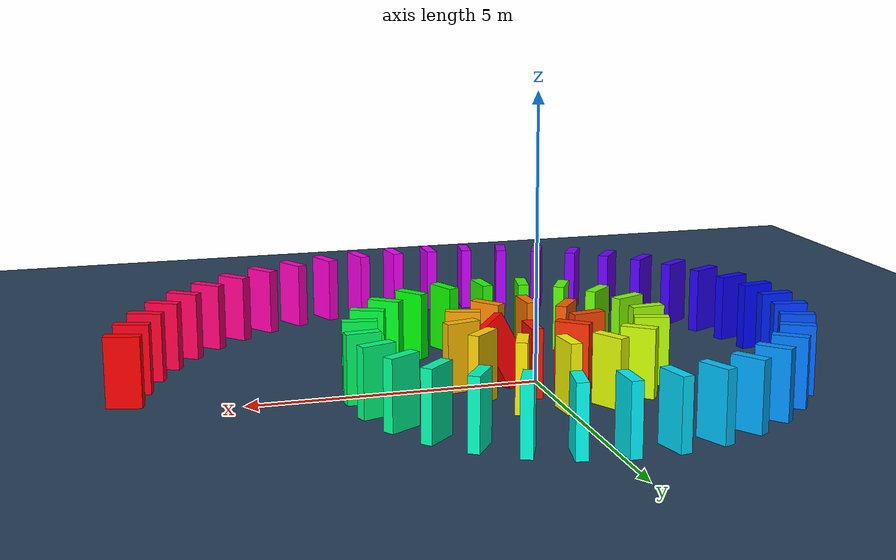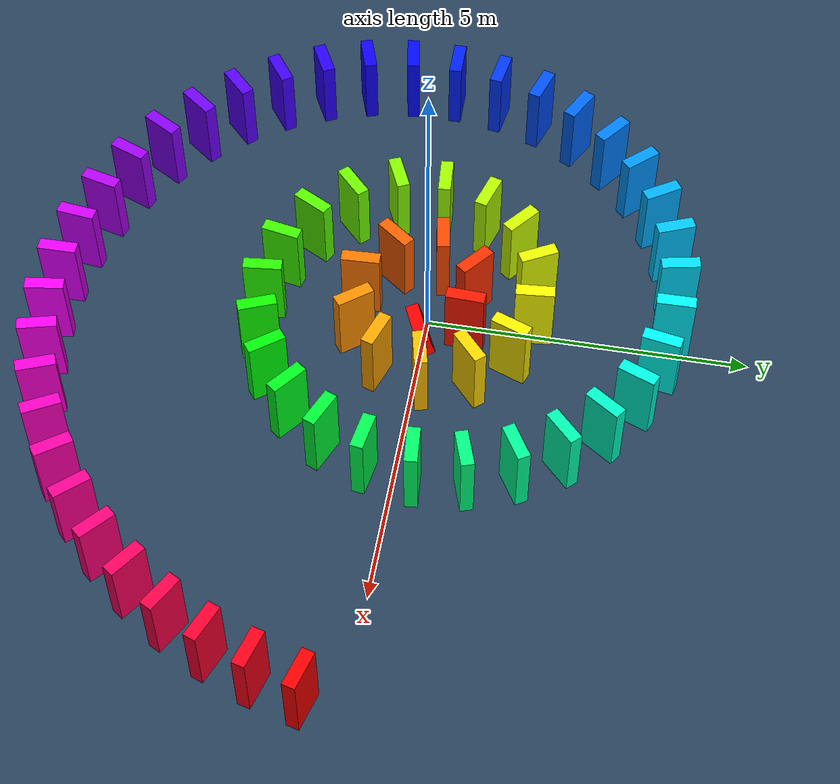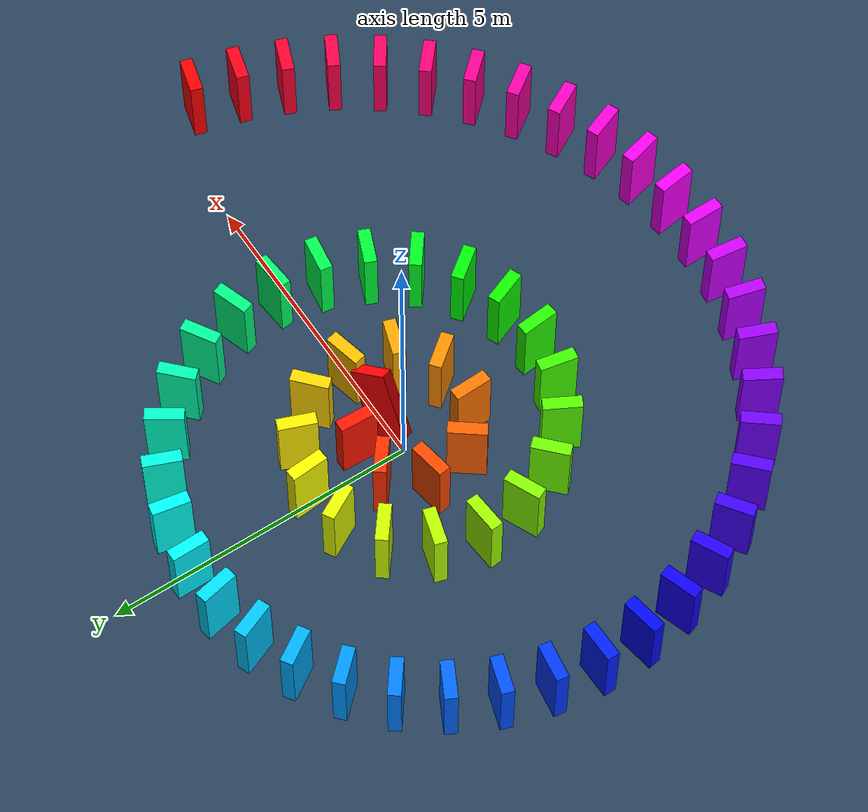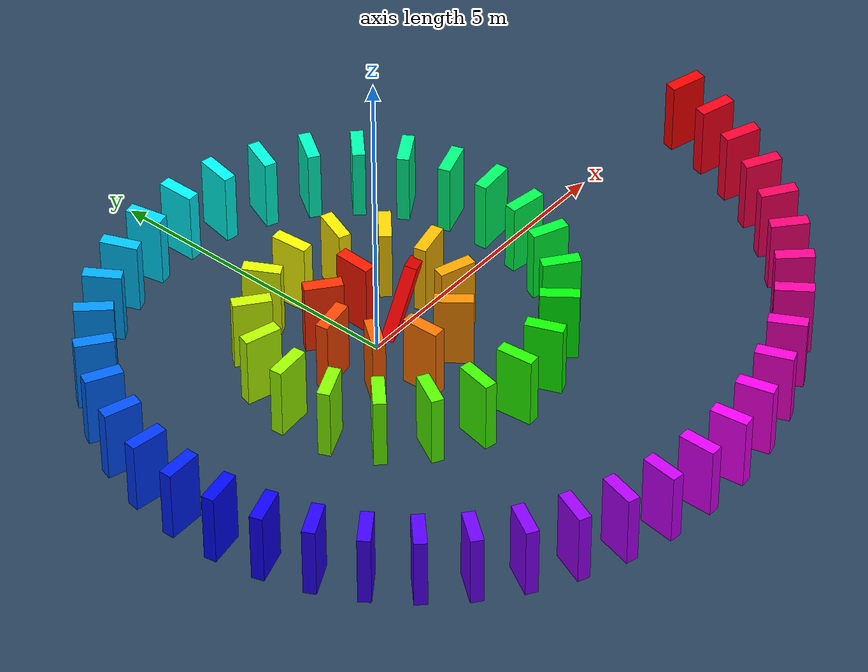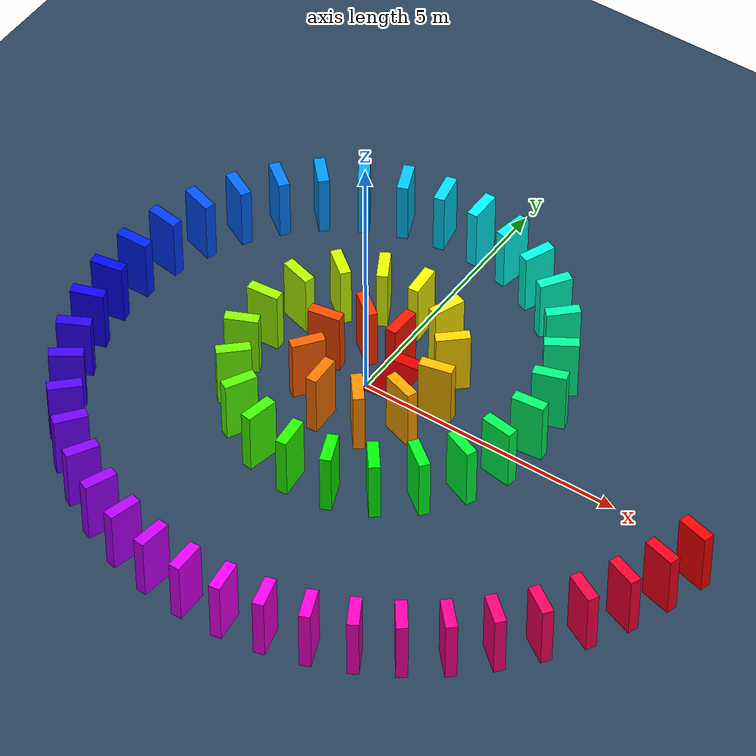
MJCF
<mujoco>
  <visual>
    <headlight diffuse="0.6 0.6 0.6" ambient="0.1 0.1 0.1" specular="0 0 0"/>
    <rgba haze="0.15 0.25 0.35 1"/>
    <global azimuth="120" elevation="-20"/>
  </visual>
  <asset>
    <texture type="skybox" builtin="gradient" rgb1="0.3 0.5 0.7" rgb2="0 0 0" width="512" height="3072"/>
    <texture type="2d" name="groundplane" builtin="checker" mark="edge" rgb1="0.2 0.3 0.4" rgb2="0.1 0.2 0.3" markrgb="0.8 0.8 0.8" width="300" height="300"/>
    <material name="groundplane" texture="groundplane" texuniform="true" texrepeat="5 5" reflectance="0.2"/>
  </asset>
  <worldbody>
    <light pos="0 0 1.5" dir="0 0 -1" directional="true"/>
    <geom name="floor" size="0 0 0.05" type="plane" material="groundplane"/>
    <body name="trigger" pos="0.6000 0.0000 0.5767" euler="0 28.0 116.4">
      <geom type="box" size="0.1000 0.3000 0.6000" rgba="1.000 0.000 0.000 1"/>
      <freejoint/>
    </body>
    <body name="domino_001" pos="0.2850 0.6357 0.6000" euler="0 0.0 177.7">
      <geom type="box" size="0.1000 0.3000 0.6000" rgba="1.000 0.092 0.000 1"/>
      <freejoint/>
    </body>
    <body name="domino_002" pos="-0.4336 0.6644 0.6000" euler="0 0.0 -128.4">
      <geom type="box" size="0.1000 0.3000 0.6000" rgba="1.000 0.185 0.000 1"/>
      <freejoint/>
    </body>
    <body name="domino_003" pos="-0.8849 0.0960 0.6000" euler="0 0.0 -80.5">
      <geom type="box" size="0.1000 0.3000 0.6000" rgba="1.000 0.277 0.000 1"/>
      <freejoint/>
    </body>
    <body name="domino_004" pos="-0.7640 -0.6244 0.6000" euler="0 0.0 -37.2">
      <geom type="box" size="0.1000 0.3000 0.6000" rgba="1.000 0.369 0.000 1"/>
      <freejoint/>
    </body>
    <body name="domino_005" pos="-0.1796 -1.0684 0.6000" euler="0 0.0 2.2">
      <geom type="box" size="0.1000 0.3000 0.6000" rgba="1.000 0.462 0.000 1"/>
      <freejoint/>
    </body>
    <body name="domino_006" pos="0.5564 -1.0407 0.6000" euler="0 0.0 38.3">
      <geom type="box" size="0.1000 0.3000 0.6000" rgba="1.000 0.554 0.000 1"/>
      <freejoint/>
    </body>
    <body name="domino_007" pos="1.1360 -0.5829 0.6000" euler="0 0.0 71.7">
      <geom type="box" size="0.1000 0.3000 0.6000" rgba="1.000 0.646 0.000 1"/>
      <freejoint/>
    </body>
    <body name="domino_008" pos="1.3682 0.1199 0.6000" euler="0 0.0 102.8">
      <geom type="box" size="0.1000 0.3000 0.6000" rgba="1.000 0.738 0.000 1"/>
      <freejoint/>
    </body>
    <body name="domino_009" pos="1.2044 0.8431 0.6000" euler="0 0.0 131.8">
      <geom type="box" size="0.1000 0.3000 0.6000" rgba="1.000 0.831 0.000 1"/>
      <freejoint/>
    </body>
    <body name="domino_010" pos="0.7098 1.3969 0.6000" euler="0 0.0 159.0">
      <geom type="box" size="0.1000 0.3000 0.6000" rgba="1.000 0.923 0.000 1"/>
      <freejoint/>
    </body>
    <body name="domino_011" pos="0.0158 1.6635 0.6000" euler="0 0.0 -175.4">
      <geom type="box" size="0.1000 0.3000 0.6000" rgba="0.985 1.000 0.000 1"/>
      <freejoint/>
    </body>
    <body name="domino_012" pos="-0.7259 1.6036 0.6000" euler="0 0.0 -151.2">
      <geom type="box" size="0.1000 0.3000 0.6000" rgba="0.892 1.000 0.000 1"/>
      <freejoint/>
    </body>
    <body name="domino_013" pos="-1.3782 1.2444 0.6000" euler="0 0.0 -128.2">
      <geom type="box" size="0.1000 0.3000 0.6000" rgba="0.800 1.000 0.000 1"/>
      <freejoint/>
    </body>
    <body name="domino_014" pos="-1.8392 0.6588 0.6000" euler="0 0.0 -106.4">
      <geom type="box" size="0.1000 0.3000 0.6000" rgba="0.708 1.000 0.000 1"/>
      <freejoint/>
    </body>
    <body name="domino_015" pos="-2.0495 -0.0566 0.6000" euler="0 0.0 -85.6">
      <geom type="box" size="0.1000 0.3000 0.6000" rgba="0.615 1.000 0.000 1"/>
      <freejoint/>
    </body>
    <body name="domino_016" pos="-1.9922 -0.8005 0.6000" euler="0 0.0 -65.7">
      <geom type="box" size="0.1000 0.3000 0.6000" rgba="0.523 1.000 0.000 1"/>
      <freejoint/>
    </body>
    <body name="domino_017" pos="-1.6855 -1.4810 0.6000" euler="0 0.0 -46.7">
      <geom type="box" size="0.1000 0.3000 0.6000" rgba="0.431 1.000 0.000 1"/>
      <freejoint/>
    </body>
    <body name="domino_018" pos="-1.1737 -2.0247 0.6000" euler="0 0.0 -28.5">
      <geom type="box" size="0.1000 0.3000 0.6000" rgba="0.338 1.000 0.000 1"/>
      <freejoint/>
    </body>
    <body name="domino_019" pos="-0.5174 -2.3815 0.6000" euler="0 0.0 -11.0">
      <geom type="box" size="0.1000 0.3000 0.6000" rgba="0.246 1.000 0.000 1"/>
      <freejoint/>
    </body>
    <body name="domino_020" pos="0.2159 -2.5245 0.6000" euler="0 0.0 5.8">
      <geom type="box" size="0.1000 0.3000 0.6000" rgba="0.154 1.000 0.000 1"/>
      <freejoint/>
    </body>
    <body name="domino_021" pos="0.9595 -2.4492 0.6000" euler="0 0.0 22.0">
      <geom type="box" size="0.1000 0.3000 0.6000" rgba="0.062 1.000 0.000 1"/>
      <freejoint/>
    </body>
    <body name="domino_022" pos="1.6527 -2.1692 0.6000" euler="0 0.0 37.6">
      <geom type="box" size="0.1000 0.3000 0.6000" rgba="0.000 1.000 0.031 1"/>
      <freejoint/>
    </body>
    <body name="domino_023" pos="2.2450 -1.7128 0.6000" euler="0 0.0 52.7">
      <geom type="box" size="0.1000 0.3000 0.6000" rgba="0.000 1.000 0.123 1"/>
      <freejoint/>
    </body>
    <body name="domino_024" pos="2.6981 -1.1177 0.6000" euler="0 0.0 67.3">
      <geom type="box" size="0.1000 0.3000 0.6000" rgba="0.000 1.000 0.215 1"/>
      <freejoint/>
    </body>
    <body name="domino_025" pos="2.9867 -0.4276 0.6000" euler="0 0.0 81.4">
      <geom type="box" size="0.1000 0.3000 0.6000" rgba="0.000 1.000 0.308 1"/>
      <freejoint/>
    </body>
    <body name="domino_026" pos="3.0982 0.3122 0.6000" euler="0 0.0 95.1">
      <geom type="box" size="0.1000 0.3000 0.6000" rgba="0.000 1.000 0.400 1"/>
      <freejoint/>
    </body>
    <body name="domino_027" pos="3.0314 1.0575 0.6000" euler="0 0.0 108.4">
      <geom type="box" size="0.1000 0.3000 0.6000" rgba="0.000 1.000 0.492 1"/>
      <freejoint/>
    </body>
    <body name="domino_028" pos="2.7952 1.7676 0.6000" euler="0 0.0 121.3">
      <geom type="box" size="0.1000 0.3000 0.6000" rgba="0.000 1.000 0.585 1"/>
      <freejoint/>
    </body>
    <body name="domino_029" pos="2.4066 2.4073 0.6000" euler="0 0.0 133.8">
      <geom type="box" size="0.1000 0.3000 0.6000" rgba="0.000 1.000 0.677 1"/>
      <freejoint/>
    </body>
    <body name="domino_030" pos="1.8884 2.9475 0.6000" euler="0 0.0 146.0">
      <geom type="box" size="0.1000 0.3000 0.6000" rgba="0.000 1.000 0.769 1"/>
      <freejoint/>
    </body>
    <body name="domino_031" pos="1.2680 3.3664 0.6000" euler="0 0.0 157.8">
      <geom type="box" size="0.1000 0.3000 0.6000" rgba="0.000 1.000 0.862 1"/>
      <freejoint/>
    </body>
    <body name="domino_032" pos="0.5746 3.6490 0.6000" euler="0 0.0 169.4">
      <geom type="box" size="0.1000 0.3000 0.6000" rgba="0.000 1.000 0.954 1"/>
      <freejoint/>
    </body>
    <body name="domino_033" pos="-0.1613 3.7872 0.6000" euler="0 0.0 -179.4">
      <geom type="box" size="0.1000 0.3000 0.6000" rgba="0.000 0.954 1.000 1"/>
      <freejoint/>
    </body>
    <body name="domino_034" pos="-0.9100 3.7793 0.6000" euler="0 0.0 -168.4">
      <geom type="box" size="0.1000 0.3000 0.6000" rgba="0.000 0.862 1.000 1"/>
      <freejoint/>
    </body>
    <body name="domino_035" pos="-1.6437 3.6291 0.6000" euler="0 0.0 -157.7">
      <geom type="box" size="0.1000 0.3000 0.6000" rgba="0.000 0.769 1.000 1"/>
      <freejoint/>
    </body>
    <body name="domino_036" pos="-2.3368 3.3454 0.6000" euler="0 0.0 -147.3">
      <geom type="box" size="0.1000 0.3000 0.6000" rgba="0.000 0.677 1.000 1"/>
      <freejoint/>
    </body>
    <body name="domino_037" pos="-2.9670 2.9406 0.6000" euler="0 0.0 -137.1">
      <geom type="box" size="0.1000 0.3000 0.6000" rgba="0.000 0.585 1.000 1"/>
      <freejoint/>
    </body>
    <body name="domino_038" pos="-3.5156 2.4307 0.6000" euler="0 0.0 -127.1">
      <geom type="box" size="0.1000 0.3000 0.6000" rgba="0.000 0.492 1.000 1"/>
      <freejoint/>
    </body>
    <body name="domino_039" pos="-3.9677 1.8334 0.6000" euler="0 0.0 -117.4">
      <geom type="box" size="0.1000 0.3000 0.6000" rgba="0.000 0.400 1.000 1"/>
      <freejoint/>
    </body>
    <body name="domino_040" pos="-4.3120 1.1681 0.6000" euler="0 0.0 -107.8">
      <geom type="box" size="0.1000 0.3000 0.6000" rgba="0.000 0.308 1.000 1"/>
      <freejoint/>
    </body>
    <body name="domino_041" pos="-4.5414 0.4549 0.6000" euler="0 0.0 -98.5">
      <geom type="box" size="0.1000 0.3000 0.6000" rgba="0.000 0.215 1.000 1"/>
      <freejoint/>
    </body>
    <body name="domino_042" pos="-4.6520 -0.2861 0.6000" euler="0 0.0 -89.3">
      <geom type="box" size="0.1000 0.3000 0.6000" rgba="0.000 0.123 1.000 1"/>
      <freejoint/>
    </body>
    <body name="domino_043" pos="-4.6435 -1.0352 0.6000" euler="0 0.0 -80.4">
      <geom type="box" size="0.1000 0.3000 0.6000" rgba="0.000 0.031 1.000 1"/>
      <freejoint/>
    </body>
    <body name="domino_044" pos="-4.5184 -1.7740 0.6000" euler="0 0.0 -71.6">
      <geom type="box" size="0.1000 0.3000 0.6000" rgba="0.062 0.000 1.000 1"/>
      <freejoint/>
    </body>
    <body name="domino_045" pos="-4.2821 -2.4850 0.6000" euler="0 0.0 -63.0">
      <geom type="box" size="0.1000 0.3000 0.6000" rgba="0.154 0.000 1.000 1"/>
      <freejoint/>
    </body>
    <body name="domino_046" pos="-3.9419 -3.1527 0.6000" euler="0 0.0 -54.6">
      <geom type="box" size="0.1000 0.3000 0.6000" rgba="0.246 0.000 1.000 1"/>
      <freejoint/>
    </body>
    <body name="domino_047" pos="-3.5074 -3.7632 0.6000" euler="0 0.0 -46.3">
      <geom type="box" size="0.1000 0.3000 0.6000" rgba="0.338 0.000 1.000 1"/>
      <freejoint/>
    </body>
    <body name="domino_048" pos="-2.9895 -4.3047 0.6000" euler="0 0.0 -38.1">
      <geom type="box" size="0.1000 0.3000 0.6000" rgba="0.431 0.000 1.000 1"/>
      <freejoint/>
    </body>
    <body name="domino_049" pos="-2.4001 -4.7676 0.6000" euler="0 0.0 -30.2">
      <geom type="box" size="0.1000 0.3000 0.6000" rgba="0.523 0.000 1.000 1"/>
      <freejoint/>
    </body>
    <body name="domino_050" pos="-1.7522 -5.1441 0.6000" euler="0 0.0 -22.3">
      <geom type="box" size="0.1000 0.3000 0.6000" rgba="0.615 0.000 1.000 1"/>
      <freejoint/>
    </body>
    <body name="domino_051" pos="-1.0589 -5.4287 0.6000" euler="0 0.0 -14.6">
      <geom type="box" size="0.1000 0.3000 0.6000" rgba="0.708 0.000 1.000 1"/>
      <freejoint/>
    </body>
    <body name="domino_052" pos="-0.3337 -5.6178 0.6000" euler="0 0.0 -7.0">
      <geom type="box" size="0.1000 0.3000 0.6000" rgba="0.800 0.000 1.000 1"/>
      <freejoint/>
    </body>
    <body name="domino_053" pos="0.4101 -5.7097 0.6000" euler="0 0.0 0.4">
      <geom type="box" size="0.1000 0.3000 0.6000" rgba="0.892 0.000 1.000 1"/>
      <freejoint/>
    </body>
    <body name="domino_054" pos="1.1596 -5.7044 0.6000" euler="0 0.0 7.7">
      <geom type="box" size="0.1000 0.3000 0.6000" rgba="0.985 0.000 1.000 1"/>
      <freejoint/>
    </body>
    <body name="domino_055" pos="1.9023 -5.6037 0.6000" euler="0 0.0 14.9">
      <geom type="box" size="0.1000 0.3000 0.6000" rgba="1.000 0.000 0.923 1"/>
      <freejoint/>
    </body>
    <body name="domino_056" pos="2.6265 -5.4106 0.6000" euler="0 0.0 22.0">
      <geom type="box" size="0.1000 0.3000 0.6000" rgba="1.000 0.000 0.831 1"/>
      <freejoint/>
    </body>
    <body name="domino_057" pos="3.3214 -5.1297 0.6000" euler="0 0.0 29.0">
      <geom type="box" size="0.1000 0.3000 0.6000" rgba="1.000 0.000 0.738 1"/>
      <freejoint/>
    </body>
    <body name="domino_058" pos="3.9771 -4.7665 0.6000" euler="0 0.0 35.8">
      <geom type="box" size="0.1000 0.3000 0.6000" rgba="1.000 0.000 0.646 1"/>
      <freejoint/>
    </body>
    <body name="domino_059" pos="4.5846 -4.3276 0.6000" euler="0 0.0 42.6">
      <geom type="box" size="0.1000 0.3000 0.6000" rgba="1.000 0.000 0.554 1"/>
      <freejoint/>
    </body>
    <body name="domino_060" pos="5.1363 -3.8201 0.6000" euler="0 0.0 49.3">
      <geom type="box" size="0.1000 0.3000 0.6000" rgba="1.000 0.000 0.462 1"/>
      <freejoint/>
    </body>
    <body name="domino_061" pos="5.6255 -3.2521 0.6000" euler="0 0.0 55.8">
      <geom type="box" size="0.1000 0.3000 0.6000" rgba="1.000 0.000 0.369 1"/>
      <freejoint/>
    </body>
    <body name="domino_062" pos="6.0466 -2.6320 0.6000" euler="0 0.0 62.3">
      <geom type="box" size="0.1000 0.3000 0.6000" rgba="1.000 0.000 0.277 1"/>
      <freejoint/>
    </body>
    <body name="domino_063" pos="6.3952 -1.9684 0.6000" euler="0 0.0 68.7">
      <geom type="box" size="0.1000 0.3000 0.6000" rgba="1.000 0.000 0.185 1"/>
      <freejoint/>
    </body>
    <body name="domino_064" pos="6.6680 -1.2702 0.6000" euler="0 0.0 74.9">
      <geom type="box" size="0.1000 0.3000 0.6000" rgba="1.000 0.000 0.092 1"/>
      <freejoint/>
    </body>
    <body name="domino_065" pos="6.8629 -0.5463 0.6000" euler="0 0.0 74.9">
      <geom type="box" size="0.1000 0.3000 0.6000" rgba="1.000 0.000 0.000 1"/>
      <freejoint/>
    </body>
  </worldbody>
</mujoco>
